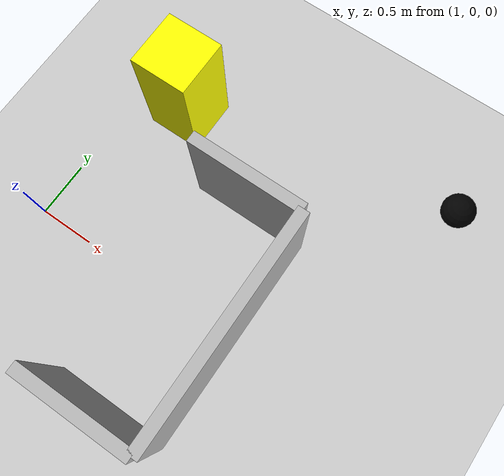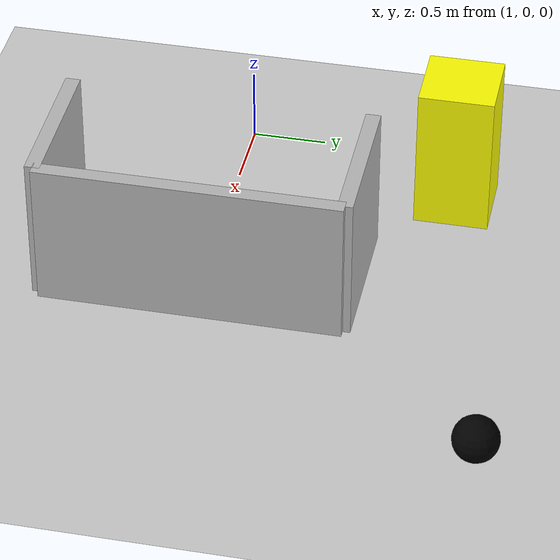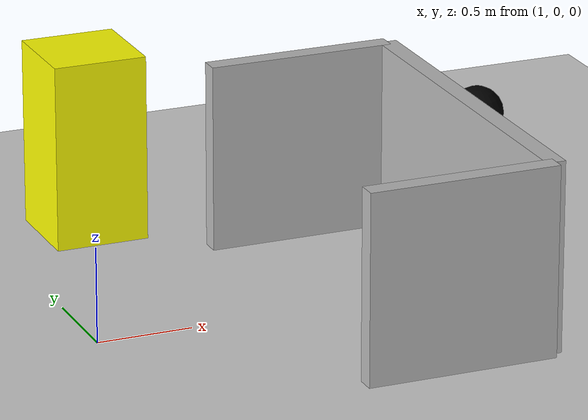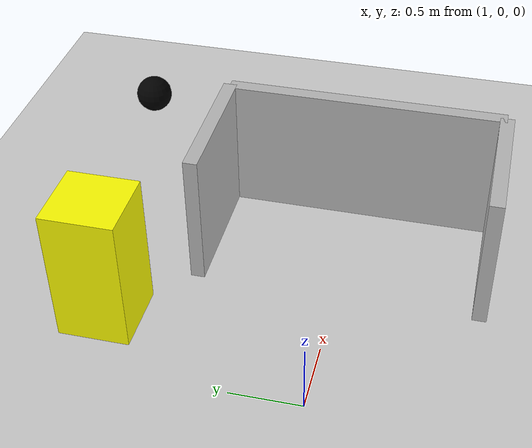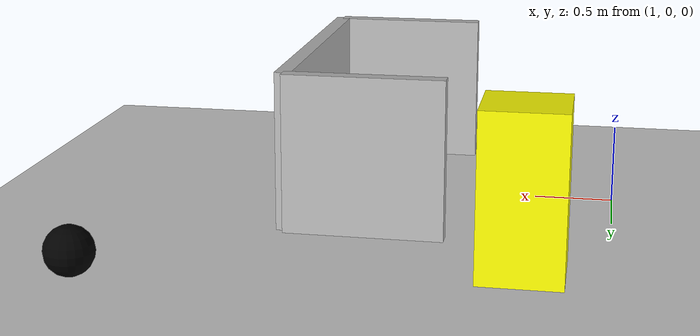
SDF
<?xml version="1.0" ?>
<sdf version="1.8">
    <world name="dynamic_cleaner_world">
        <physics name="1ms" type="ignored">
            <max_step_size>0.001</max_step_size>
            <real_time_factor>1.0</real_time_factor>
            <real_time_update_rate>0</real_time_update_rate>
        </physics>
        <plugin filename="gz-sim-physics-system" name="gz::sim::systems::Physics"></plugin>
        <plugin filename="gz-sim-user-commands-system" name="gz::sim::systems::UserCommands"></plugin>
        <plugin filename="gz-sim-scene-broadcaster-system" name="gz::sim::systems::SceneBroadcaster"></plugin>
        <plugin filename="gz-sim-sensors-system" name="gz::sim::systems::Sensors">
            <render_engine>ogre2</render_engine>
        </plugin>

        <light type="directional" name="sun">
            <cast_shadows>false</cast_shadows>

            <pose>0 0 10 0 0 0</pose>
            <diffuse>0.8 0.8 0.8 1</diffuse>
            <specular>0.2 0.2 0.2 1</specular>
            <direction>-0.5 0.1 -0.9</direction>
        </light>

        <model name="ground_plane">
            <static>true</static>
            <link name="link">
                <collision name="collision">
                    <geometry><plane><normal>0 0 1</normal><size>100 100</size></plane></geometry>
                </collision>
                <visual name="visual">
                    <geometry><plane><normal>0 0 1</normal><size>100 100</size></plane></geometry>
                    <material><ambient>0.8 0.8 0.8 1</ambient><diffuse>0.8 0.8 0.8 1</diffuse></material>
                </visual>
            </link>
        </model>

        <!-- STATIC OBSTACLES (The Trap) -->
        <model name="u_trap">
            <static>true</static>
            <pose>3.0 0.0 0.5 0 0 0</pose>
            <link name="back"><collision name="c"><geometry><box><size>0.1 2.0 1.0</size></box></geometry></collision><visual name="v"><geometry><box><size>0.1 2.0 1.0</size></box></geometry></visual></link>
            <link name="top"><pose>-0.5 1.0 0 0 0 0</pose><collision name="c"><geometry><box><size>1.0 0.1 1.0</size></box></geometry></collision><visual name="v"><geometry><box><size>1.0 0.1 1.0</size></box></geometry></visual></link>
            <link name="bot"><pose>-0.5 -1.0 0 0 0 0</pose><collision name="c"><geometry><box><size>1.0 0.1 1.0</size></box></geometry></collision><visual name="v"><geometry><box><size>1.0 0.1 1.0</size></box></geometry></visual></link>
        </model>

        <!-- DYNAMIC OBSTACLE (To-and-Fro) -->
        <!-- Note: Scripted movement via plugin -->
        <model name="patrol_box">
            <pose>1.5 1.5 0.5 0 0 0</pose>
            <link name="link">
                <collision name="c"><geometry><box><size>0.5 0.5 1.0</size></box></geometry></collision>
                <visual name="v"><geometry><box><size>0.5 0.5 1.0</size></box></geometry><material><ambient>1 1 0 1</ambient></material></visual>
            </link>
            <plugin filename="gz-sim-linearbatteryplugin-system" name="gz::sim::systems::LinearBatteryPlugin"></plugin>
            <!-- Using Python script or Actor for better cyclic motion, but here we define placeholder -->
        </model>

        <!-- GARBAGE TARGET -->
        <model name="garbage_bag">
            <static>false</static>
            <pose>4.0 2.0 0.15 0 0 0</pose>
            <link name="link">
                <inertial>
                    <mass>0.2</mass>
                    <inertia>
                        <ixx>0.001</ixx><iyy>0.001</iyy><izz>0.001</izz>
                    </inertia>
                </inertial>
                <collision name="c">
                    <geometry><sphere><radius>0.15</radius></sphere></geometry>
                    <surface>
                        <friction>
                            <ode><mu>1.0</mu><mu2>1.0</mu2></ode>
                        </friction>
                    </surface>
                </collision>
                <visual name="v">
                    <geometry><sphere><radius>0.15</radius></sphere></geometry>
                    <material><ambient>0 0 0 1</ambient><diffuse>0 0 0 1</diffuse></material>
                </visual>
            </link>
        </model>
    </world>
</sdf>
